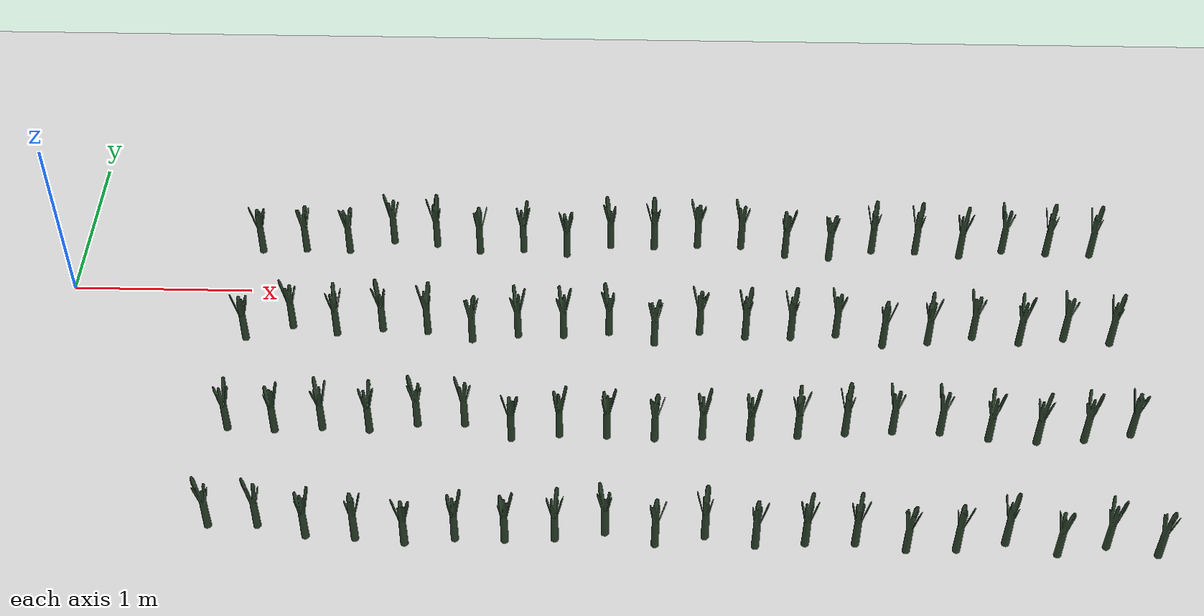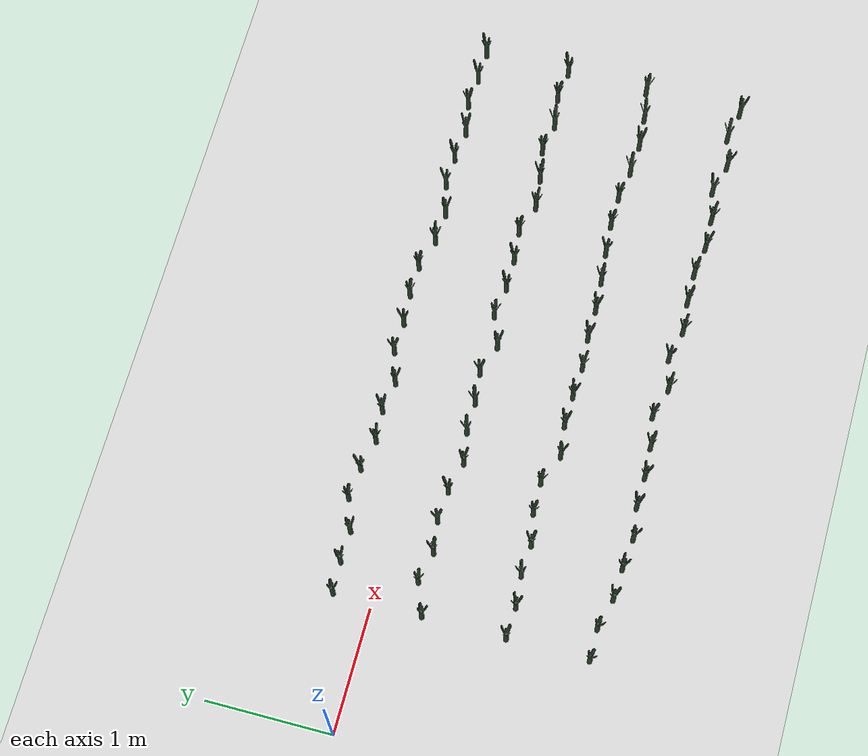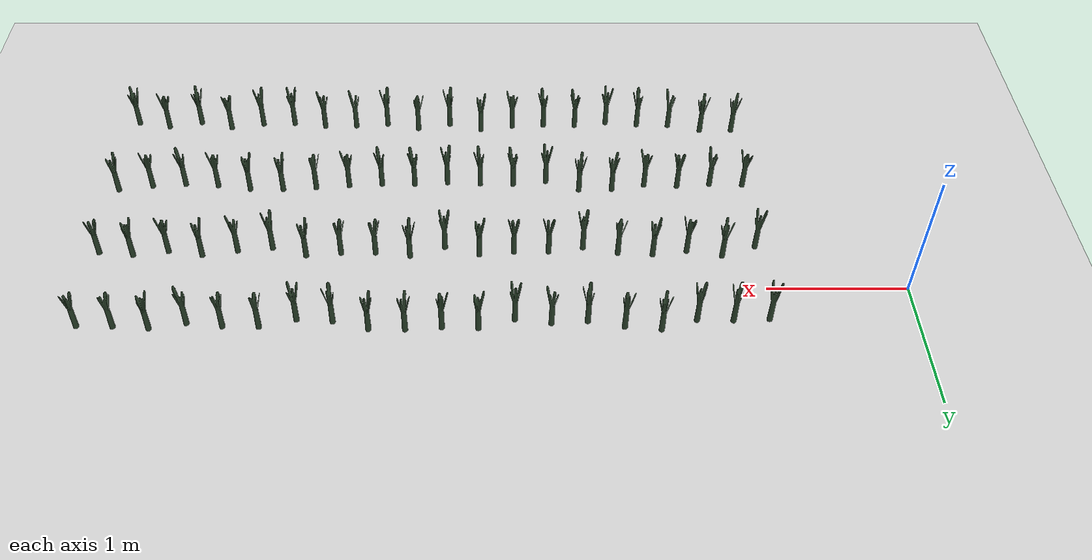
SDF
<sdf version="1.6">
 <world name="default">
  <light name="sun" type="directional">
   <pose>0 0 10 0 -0 0</pose>
   <diffuse>0.8 0.8 0.8 1</diffuse>
   <specular>0.1 0.1 0.1 1</specular>
   <attenuation>
    <range>1000</range>
    <constant>0.9</constant>
    <linear>0.01</linear>
    <quadratic>0.001</quadratic>
   </attenuation>
   <direction>0.9 0.5 -1</direction>
  </light>
  <include><uri>model://dirt_plane</uri></include>
  <scene><sky><clouds><speed>0</speed></clouds></sky></scene>
  <include><uri>model://Leek</uri><pose>1.030000 0.303212 0.15 0 0 -2.807264</pose><static>0</static></include>
  <include><uri>model://Leek</uri><pose>1.280000 0.315925 0.15 0 0 -2.044477</pose><static>0</static></include>
  <include><uri>model://Leek</uri><pose>1.530000 0.310660 0.15 0 0 -2.360388</pose><static>0</static></include>
  <include><uri>model://Leek</uri><pose>1.780000 0.397468 0.15 0 0 2.848094</pose><static>0</static></include>
  <include><uri>model://Leek</uri><pose>2.030000 0.373361 0.15 0 0 1.401681</pose><static>0</static></include>
  <include><uri>model://Leek</uri><pose>2.280000 0.321487 0.15 0 0 -1.710780</pose><static>0</static></include>
  <include><uri>model://Leek</uri><pose>2.530000 0.340501 0.15 0 0 -0.569969</pose><static>0</static></include>
  <include><uri>model://Leek</uri><pose>2.780000 0.306486 0.15 0 0 -2.610815</pose><static>0</static></include>
  <include><uri>model://Leek</uri><pose>3.030000 0.385443 0.15 0 0 2.126608</pose><static>0</static></include>
  <include><uri>model://Leek</uri><pose>3.280000 0.378048 0.15 0 0 1.682894</pose><static>0</static></include>
  <include><uri>model://Leek</uri><pose>3.530000 0.397500 0.15 0 0 2.850019</pose><static>0</static></include>
  <include><uri>model://Leek</uri><pose>3.780000 0.393688 0.15 0 0 2.621307</pose><static>0</static></include>
  <include><uri>model://Leek</uri><pose>4.030000 0.325445 0.15 0 0 -1.473309</pose><static>0</static></include>
  <include><uri>model://Leek</uri><pose>4.280000 0.308175 0.15 0 0 -2.509486</pose><static>0</static></include>
  <include><uri>model://Leek</uri><pose>4.530000 0.373595 0.15 0 0 1.415682</pose><static>0</static></include>
  <include><uri>model://Leek</uri><pose>4.780000 0.369595 0.15 0 0 1.175710</pose><static>0</static></include>
  <include><uri>model://Leek</uri><pose>5.030000 0.340512 0.15 0 0 -0.569271</pose><static>0</static></include>
  <include><uri>model://Leek</uri><pose>5.280000 0.389357 0.15 0 0 2.361446</pose><static>0</static></include>
  <include><uri>model://Leek</uri><pose>5.530000 0.370908 0.15 0 0 1.254468</pose><static>0</static></include>
  <include><uri>model://Leek</uri><pose>5.780000 0.366447 0.15 0 0 0.986809</pose><static>0</static></include>
  <include><uri>model://Leek</uri><pose>1.030000 -0.396392 0.15 0 0 -2.783500</pose><static>0</static></include>
  <include><uri>model://Leek</uri><pose>1.280000 -0.300531 0.15 0 0 2.968157</pose><static>0</static></include>
  <include><uri>model://Leek</uri><pose>1.530000 -0.351068 0.15 0 0 -0.064083</pose><static>0</static></include>
  <include><uri>model://Leek</uri><pose>1.780000 -0.313799 0.15 0 0 2.172069</pose><static>0</static></include>
  <include><uri>model://Leek</uri><pose>2.030000 -0.330038 0.15 0 0 1.197700</pose><static>0</static></include>
  <include><uri>model://Leek</uri><pose>2.280000 -0.385715 0.15 0 0 -2.142903</pose><static>0</static></include>
  <include><uri>model://Leek</uri><pose>2.530000 -0.344530 0.15 0 0 0.328203</pose><static>0</static></include>
  <include><uri>model://Leek</uri><pose>2.780000 -0.342899 0.15 0 0 0.426082</pose><static>0</static></include>
  <include><uri>model://Leek</uri><pose>3.030000 -0.314277 0.15 0 0 2.143353</pose><static>0</static></include>
  <include><uri>model://Leek</uri><pose>3.280000 -0.390154 0.15 0 0 -2.409256</pose><static>0</static></include>
  <include><uri>model://Leek</uri><pose>3.530000 -0.300224 0.15 0 0 2.986560</pose><static>0</static></include>
  <include><uri>model://Leek</uri><pose>3.780000 -0.332686 0.15 0 0 1.038821</pose><static>0</static></include>
  <include><uri>model://Leek</uri><pose>4.030000 -0.330863 0.15 0 0 1.148241</pose><static>0</static></include>
  <include><uri>model://Leek</uri><pose>4.280000 -0.305625 0.15 0 0 2.662492</pose><static>0</static></include>
  <include><uri>model://Leek</uri><pose>4.530000 -0.380935 0.15 0 0 -1.856125</pose><static>0</static></include>
  <include><uri>model://Leek</uri><pose>4.780000 -0.352533 0.15 0 0 -0.152005</pose><static>0</static></include>
  <include><uri>model://Leek</uri><pose>5.030000 -0.307879 0.15 0 0 2.527238</pose><static>0</static></include>
  <include><uri>model://Leek</uri><pose>5.280000 -0.347028 0.15 0 0 0.178294</pose><static>0</static></include>
  <include><uri>model://Leek</uri><pose>5.530000 -0.309205 0.15 0 0 2.447680</pose><static>0</static></include>
  <include><uri>model://Leek</uri><pose>5.780000 -0.336168 0.15 0 0 0.829912</pose><static>0</static></include>
  <include><uri>model://Leek</uri><pose>1.030000 -1.056452 0.15 0 0 -0.387121</pose><static>0</static></include>
  <include><uri>model://Leek</uri><pose>1.280000 -1.066926 0.15 0 0 -1.015568</pose><static>0</static></include>
  <include><uri>model://Leek</uri><pose>1.530000 -1.043901 0.15 0 0 0.365954</pose><static>0</static></include>
  <include><uri>model://Leek</uri><pose>1.780000 -1.057103 0.15 0 0 -0.426178</pose><static>0</static></include>
  <include><uri>model://Leek</uri><pose>2.030000 -1.008899 0.15 0 0 2.466040</pose><static>0</static></include>
  <include><uri>model://Leek</uri><pose>2.280000 -1.003412 0.15 0 0 2.795270</pose><static>0</static></include>
  <include><uri>model://Leek</uri><pose>2.530000 -1.097854 0.15 0 0 -2.871251</pose><static>0</static></include>
  <include><uri>model://Leek</uri><pose>2.780000 -1.065604 0.15 0 0 -0.936237</pose><static>0</static></include>
  <include><uri>model://Leek</uri><pose>3.030000 -1.070284 0.15 0 0 -1.217052</pose><static>0</static></include>
  <include><uri>model://Leek</uri><pose>3.280000 -1.084128 0.15 0 0 -2.047707</pose><static>0</static></include>
  <include><uri>model://Leek</uri><pose>3.530000 -1.065726 0.15 0 0 -0.943574</pose><static>0</static></include>
  <include><uri>model://Leek</uri><pose>3.780000 -1.067187 0.15 0 0 -1.031220</pose><static>0</static></include>
  <include><uri>model://Leek</uri><pose>4.030000 -1.051046 0.15 0 0 -0.062759</pose><static>0</static></include>
  <include><uri>model://Leek</uri><pose>4.280000 -1.027161 0.15 0 0 1.370360</pose><static>0</static></include>
  <include><uri>model://Leek</uri><pose>4.530000 -1.008114 0.15 0 0 2.513176</pose><static>0</static></include>
  <include><uri>model://Leek</uri><pose>4.780000 -1.010261 0.15 0 0 2.384337</pose><static>0</static></include>
  <include><uri>model://Leek</uri><pose>5.030000 -1.048095 0.15 0 0 0.114282</pose><static>0</static></include>
  <include><uri>model://Leek</uri><pose>5.280000 -1.063515 0.15 0 0 -0.810878</pose><static>0</static></include>
  <include><uri>model://Leek</uri><pose>5.530000 -1.045211 0.15 0 0 0.287332</pose><static>0</static></include>
  <include><uri>model://Leek</uri><pose>5.780000 -1.002620 0.15 0 0 2.842823</pose><static>0</static></include>
  <include><uri>model://Leek</uri><pose>1.030000 -1.706227 0.15 0 0 2.626352</pose><static>0</static></include>
  <include><uri>model://Leek</uri><pose>1.280000 -1.702689 0.15 0 0 2.838631</pose><static>0</static></include>
  <include><uri>model://Leek</uri><pose>1.530000 -1.764300 0.15 0 0 -0.858000</pose><static>0</static></include>
  <include><uri>model://Leek</uri><pose>1.780000 -1.774391 0.15 0 0 -1.463468</pose><static>0</static></include>
  <include><uri>model://Leek</uri><pose>2.030000 -1.798753 0.15 0 0 -2.925160</pose><static>0</static></include>
  <include><uri>model://Leek</uri><pose>2.280000 -1.765071 0.15 0 0 -0.904274</pose><static>0</static></include>
  <include><uri>model://Leek</uri><pose>2.530000 -1.769479 0.15 0 0 -1.168747</pose><static>0</static></include>
  <include><uri>model://Leek</uri><pose>2.780000 -1.755493 0.15 0 0 -0.329550</pose><static>0</static></include>
  <include><uri>model://Leek</uri><pose>3.030000 -1.712420 0.15 0 0 2.254798</pose><static>0</static></include>
  <include><uri>model://Leek</uri><pose>3.280000 -1.780598 0.15 0 0 -1.835856</pose><static>0</static></include>
  <include><uri>model://Leek</uri><pose>3.530000 -1.725681 0.15 0 0 1.459130</pose><static>0</static></include>
  <include><uri>model://Leek</uri><pose>3.780000 -1.780021 0.15 0 0 -1.801244</pose><static>0</static></include>
  <include><uri>model://Leek</uri><pose>4.030000 -1.758057 0.15 0 0 -0.483401</pose><static>0</static></include>
  <include><uri>model://Leek</uri><pose>4.280000 -1.754973 0.15 0 0 -0.298385</pose><static>0</static></include>
  <include><uri>model://Leek</uri><pose>4.530000 -1.790363 0.15 0 0 -2.421806</pose><static>0</static></include>
  <include><uri>model://Leek</uri><pose>4.780000 -1.782108 0.15 0 0 -1.926493</pose><static>0</static></include>
  <include><uri>model://Leek</uri><pose>5.030000 -1.734849 0.15 0 0 0.909070</pose><static>0</static></include>
  <include><uri>model://Leek</uri><pose>5.280000 -1.799183 0.15 0 0 -2.950955</pose><static>0</static></include>
  <include><uri>model://Leek</uri><pose>5.530000 -1.746897 0.15 0 0 0.186185</pose><static>0</static></include>
  <include><uri>model://Leek</uri><pose>5.780000 -1.794223 0.15 0 0 -2.653376</pose><static>0</static></include>
 </world>
</sdf>

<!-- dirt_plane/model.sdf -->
<sdf version="1.4">
<model name="dirt_plane">
  <static>true</static>
    <link name="link">
      <collision name="collision">
        <geometry>
          <plane>
            <normal>0 0 1</normal>
            <size>100 100</size>
          </plane>
        </geometry>
        <surface>
          <friction>
            <ode>
              <mu>100</mu>
              <mu2>50</mu2>
            </ode>
          </friction>
        </surface>
      </collision>
      <visual name="visual">
        <cast_shadows>false</cast_shadows>
        <geometry>
          <plane>
            <normal>0 0 1</normal>
            <size>100 100</size>
          </plane>
        </geometry>
        <material>
          <script>
            <uri>model://ground_plane/materials/scripts/my_ground_plane.material</uri>
            <uri>model://ground_plane/materials/textures</uri>
            <name>my_ground_plane/Dirt</name>
          </script>
        </material>
      </visual>
    </link>
  </model>
</sdf>

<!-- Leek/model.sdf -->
<sdf version='1.6'>
  <model name='Leek'>
    <link name='link'>
      <pose frame=''>0 0 0 0 -0 0</pose>
      <inertial>
        <mass>1</mass>
        <inertia>
          <ixx>0.145833</ixx>
          <ixy>0</ixy>
          <ixz>0</ixz>
          <iyy>0.145833</iyy>
          <iyz>0</iyz>
          <izz>0.125</izz>
        </inertia>
        <pose frame=''>0 0 0 0 -0 0</pose>
      </inertial>
      <self_collide>0</self_collide>
      <kinematic>0</kinematic>
      <gravity>1</gravity>
      <visual name='visual'>
        <geometry>
          <mesh>
            <uri>model://Leek/Poireau.dae</uri>
            <scale>1 1 1</scale>
          </mesh>
        </geometry>
        <material>
          <script>
            <name>Gazebo/Grey</name>
            <uri>file://media/materials/scripts/gazebo.material</uri>
          </script>
          <ambient>0.3 0.7 0.4 0</ambient>
          <diffuse>0.2 0.3 0.2 0</diffuse>
          <specular>0 0 0 1</specular>
          <emissive>0 0 0 1</emissive>
          <shader type='vertex'>
            <normal_map>__default__</normal_map>
          </shader>
        </material>
        <pose frame=''>0 0 -0.08 0 -0 0</pose>
        <cast_shadows>1</cast_shadows>
        <transparency>0</transparency>
      </visual>
      <collision name='collision'>
        <laser_retro>0</laser_retro>
        <max_contacts>10</max_contacts>
        <pose frame=''>0 0 0 0 -0 0</pose>
        <geometry>
          <cylinder>
            <radius>0.02</radius>
            <length>0.25</length>
          </cylinder>
        </geometry>
        <surface>
          <friction>
            <ode>
              <mu>1</mu>
              <mu2>1</mu2>
              <fdir1>0 0 0</fdir1>
              <slip1>0</slip1>
              <slip2>0</slip2>
            </ode>
            <torsional>
              <coefficient>1</coefficient>
              <patch_radius>0</patch_radius>
              <surface_radius>0</surface_radius>
              <use_patch_radius>1</use_patch_radius>
              <ode>
                <slip>0</slip>
              </ode>
            </torsional>
          </friction>
          <bounce>
            <restitution_coefficient>0</restitution_coefficient>
            <threshold>1e+06</threshold>
          </bounce>
          <contact>
            <collide_without_contact>0</collide_without_contact>
            <collide_without_contact_bitmask>1</collide_without_contact_bitmask>
            <collide_bitmask>1</collide_bitmask>
            <ode>
              <soft_cfm>0</soft_cfm>
              <soft_erp>0.2</soft_erp>
              <kp>1e+13</kp>
              <kd>1</kd>
              <max_vel>0.01</max_vel>
              <min_depth>0</min_depth>
            </ode>
            <bullet>
              <split_impulse>1</split_impulse>
              <split_impulse_penetration_threshold>-0.01</split_impulse_penetration_threshold>
              <soft_cfm>0</soft_cfm>
              <soft_erp>0.2</soft_erp>
              <kp>1e+13</kp>
              <kd>1</kd>
            </bullet>
          </contact>
        </surface>
      </collision>
    </link>
    <static>0</static>
    <allow_auto_disable>1</allow_auto_disable>
  </model>
</sdf>
